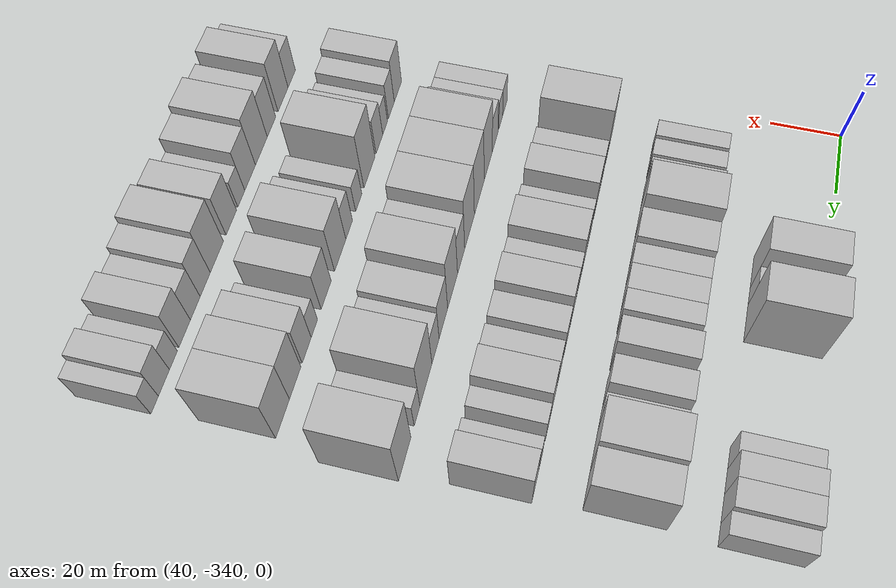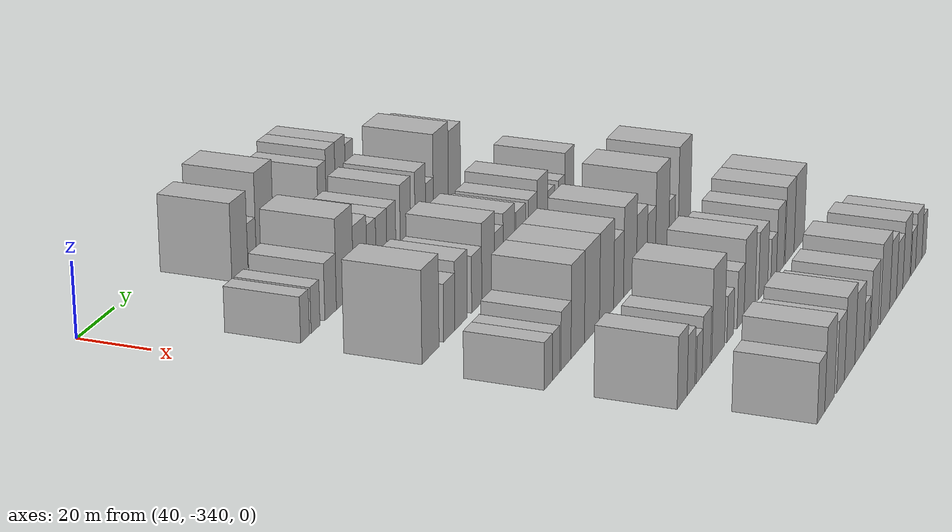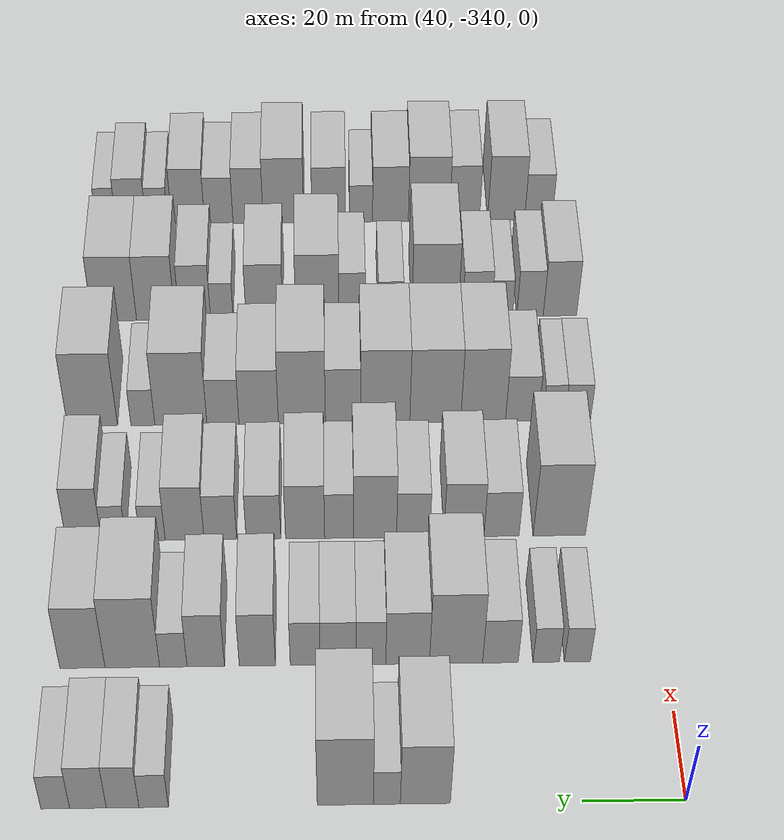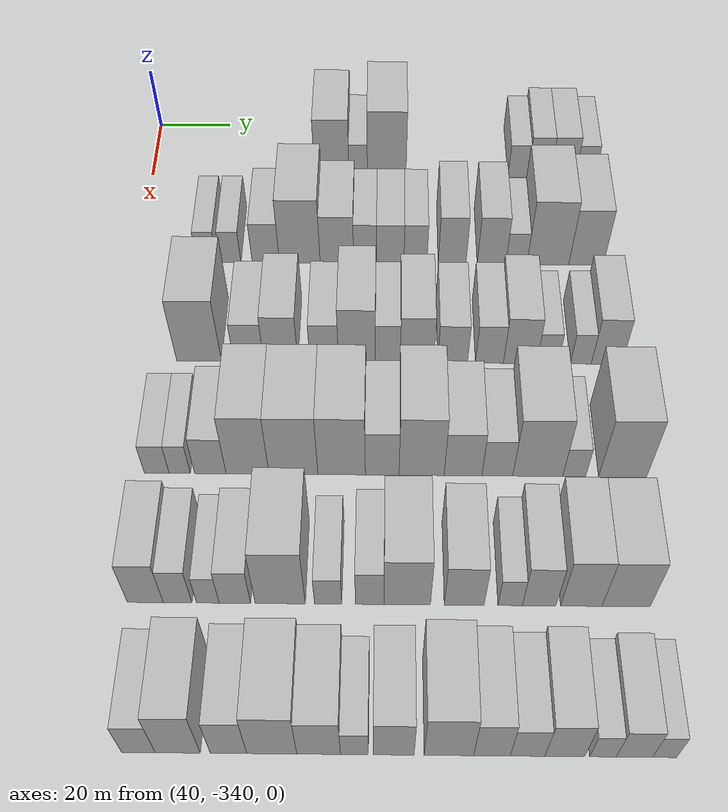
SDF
<sdf version="1.6">
 <world name="default">
  <model name="building_26">
   <static>1</static>
   <pose>50.0000 -289.6660 0 0.000000 0.000000 0.000000</pose>
   <link name="link">
    <pose>0 0 10.50 0 0 0</pose>
    <collision name="collision"><geometry><box><size>20.0000 9.6434 21.0000</size></box></geometry></collision>
    <visual name="visual">
     <cast_shadows>0</cast_shadows>
     <geometry><box><size>20.0000 9.6434 21.0000</size></box></geometry>
     <material>
      <script>
       <uri>model://HANNAS_wall/materials/scripts</uri>
       <uri>model://HANNAS_wall/materials/textures</uri>
       <name>vrc/HANNAS_wall</name>
      </script>
     </material>
    </visual>
   </link>
  </model>
  <model name="building_27">
   <static>1</static>
   <pose>50.0000 -282.2654 0 0.000000 0.000000 0.000000</pose>
   <link name="link">
    <pose>0 0 6.00 0 0 0</pose>
    <collision name="collision"><geometry><box><size>20.0000 5.1577 12.0000</size></box></geometry></collision>
    <visual name="visual">
     <cast_shadows>0</cast_shadows>
     <geometry><box><size>20.0000 5.1577 12.0000</size></box></geometry>
     <material>
      <script>
       <uri>model://HANNAS_wall/materials/scripts</uri>
       <uri>model://HANNAS_wall/materials/textures</uri>
       <name>vrc/HANNAS_wall</name>
      </script>
     </material>
    </visual>
   </link>
  </model>
  <model name="building_28">
   <static>1</static>
   <pose>50.0000 -274.2711 0 0.000000 0.000000 0.000000</pose>
   <link name="link">
    <pose>0 0 12.00 0 0 0</pose>
    <collision name="collision"><geometry><box><size>20.0000 10.8308 24.0000</size></box></geometry></collision>
    <visual name="visual">
     <cast_shadows>0</cast_shadows>
     <geometry><box><size>20.0000 10.8308 24.0000</size></box></geometry>
     <material>
      <script>
       <uri>model://HANNAS_wall/materials/scripts</uri>
       <uri>model://HANNAS_wall/materials/textures</uri>
       <name>vrc/HANNAS_wall</name>
      </script>
     </material>
    </visual>
   </link>
  </model>
  <model name="building_29">
   <static>1</static>
   <pose>50.0000 -237.3630 0 0.000000 0.000000 0.000000</pose>
   <link name="link">
    <pose>0 0 6.00 0 0 0</pose>
    <collision name="collision"><geometry><box><size>20.0000 5.6618 12.0000</size></box></geometry></collision>
    <visual name="visual">
     <cast_shadows>0</cast_shadows>
     <geometry><box><size>20.0000 5.6618 12.0000</size></box></geometry>
     <material>
      <script>
       <uri>model://HANNAS_wall/materials/scripts</uri>
       <uri>model://HANNAS_wall/materials/textures</uri>
       <name>vrc/HANNAS_wall</name>
      </script>
     </material>
    </visual>
   </link>
  </model>
  <model name="building_30">
   <static>1</static>
   <pose>50.0000 -231.3875 0 0.000000 0.000000 0.000000</pose>
   <link name="link">
    <pose>0 0 7.50 0 0 0</pose>
    <collision name="collision"><geometry><box><size>20.0000 6.2892 15.0000</size></box></geometry></collision>
    <visual name="visual">
     <cast_shadows>0</cast_shadows>
     <geometry><box><size>20.0000 6.2892 15.0000</size></box></geometry>
     <material>
      <script>
       <uri>model://HANNAS_wall/materials/scripts</uri>
       <uri>model://HANNAS_wall/materials/textures</uri>
       <name>vrc/HANNAS_wall</name>
      </script>
     </material>
    </visual>
   </link>
  </model>
  <model name="building_31">
   <static>1</static>
   <pose>50.0000 -224.7228 0 0.000000 0.000000 0.000000</pose>
   <link name="link">
    <pose>0 0 7.50 0 0 0</pose>
    <collision name="collision"><geometry><box><size>20.0000 7.0403 15.0000</size></box></geometry></collision>
    <visual name="visual">
     <cast_shadows>0</cast_shadows>
     <geometry><box><size>20.0000 7.0403 15.0000</size></box></geometry>
     <material>
      <script>
       <uri>model://HANNAS_wall/materials/scripts</uri>
       <uri>model://HANNAS_wall/materials/textures</uri>
       <name>vrc/HANNAS_wall</name>
      </script>
     </material>
    </visual>
   </link>
  </model>
  <model name="building_32">
   <static>1</static>
   <pose>50.0000 -218.4330 0 0.000000 0.000000 0.000000</pose>
   <link name="link">
    <pose>0 0 6.00 0 0 0</pose>
    <collision name="collision"><geometry><box><size>20.0000 5.5392 12.0000</size></box></geometry></collision>
    <visual name="visual">
     <cast_shadows>0</cast_shadows>
     <geometry><box><size>20.0000 5.5392 12.0000</size></box></geometry>
     <material>
      <script>
       <uri>model://HANNAS_wall/materials/scripts</uri>
       <uri>model://HANNAS_wall/materials/textures</uri>
       <name>vrc/HANNAS_wall</name>
      </script>
     </material>
    </visual>
   </link>
  </model>
  <model name="building_146">
   <static>1</static>
   <pose>82.0000 -321.7918 0 0.000000 0.000000 0.000000</pose>
   <link name="link">
    <pose>0 0 6.00 0 0 0</pose>
    <collision name="collision"><geometry><box><size>20.0000 5.2836 12.0000</size></box></geometry></collision>
    <visual name="visual">
     <cast_shadows>0</cast_shadows>
     <geometry><box><size>20.0000 5.2836 12.0000</size></box></geometry>
     <material>
      <script>
       <uri>model://HANNAS_wall/materials/scripts</uri>
       <uri>model://HANNAS_wall/materials/textures</uri>
       <name>vrc/HANNAS_wall</name>
      </script>
     </material>
    </visual>
   </link>
  </model>
  <model name="building_147">
   <static>1</static>
   <pose>82.0000 -315.4479 0 0.000000 0.000000 0.000000</pose>
   <link name="link">
    <pose>0 0 6.00 0 0 0</pose>
    <collision name="collision"><geometry><box><size>20.0000 5.4042 12.0000</size></box></geometry></collision>
    <visual name="visual">
     <cast_shadows>0</cast_shadows>
     <geometry><box><size>20.0000 5.4042 12.0000</size></box></geometry>
     <material>
      <script>
       <uri>model://HANNAS_wall/materials/scripts</uri>
       <uri>model://HANNAS_wall/materials/textures</uri>
       <name>vrc/HANNAS_wall</name>
      </script>
     </material>
    </visual>
   </link>
  </model>
  <model name="building_148">
   <static>1</static>
   <pose>82.0000 -306.1322 0 0.000000 0.000000 0.000000</pose>
   <link name="link">
    <pose>0 0 7.50 0 0 0</pose>
    <collision name="collision"><geometry><box><size>20.0000 7.2272 15.0000</size></box></geometry></collision>
    <visual name="visual">
     <cast_shadows>0</cast_shadows>
     <geometry><box><size>20.0000 7.2272 15.0000</size></box></geometry>
     <material>
      <script>
       <uri>model://HANNAS_wall/materials/scripts</uri>
       <uri>model://HANNAS_wall/materials/textures</uri>
       <name>vrc/HANNAS_wall</name>
      </script>
     </material>
    </visual>
   </link>
  </model>
  <model name="building_149">
   <static>1</static>
   <pose>82.0000 -297.1296 0 0.000000 0.000000 0.000000</pose>
   <link name="link">
    <pose>0 0 12.00 0 0 0</pose>
    <collision name="collision"><geometry><box><size>20.0000 10.7781 24.0000</size></box></geometry></collision>
    <visual name="visual">
     <cast_shadows>0</cast_shadows>
     <geometry><box><size>20.0000 10.7781 24.0000</size></box></geometry>
     <material>
      <script>
       <uri>model://HANNAS_wall/materials/scripts</uri>
       <uri>model://HANNAS_wall/materials/textures</uri>
       <name>vrc/HANNAS_wall</name>
      </script>
     </material>
    </visual>
   </link>
  </model>
  <model name="building_150">
   <static>1</static>
   <pose>82.0000 -287.2996 0 0.000000 0.000000 0.000000</pose>
   <link name="link">
    <pose>0 0 9.00 0 0 0</pose>
    <collision name="collision"><geometry><box><size>20.0000 8.8818 18.0000</size></box></geometry></collision>
    <visual name="visual">
     <cast_shadows>0</cast_shadows>
     <geometry><box><size>20.0000 8.8818 18.0000</size></box></geometry>
     <material>
      <script>
       <uri>model://HANNAS_wall/materials/scripts</uri>
       <uri>model://HANNAS_wall/materials/textures</uri>
       <name>vrc/HANNAS_wall</name>
      </script>
     </material>
    </visual>
   </link>
  </model>
  <model name="building_151">
   <static>1</static>
   <pose>82.0000 -279.8414 0 0.000000 0.000000 0.000000</pose>
   <link name="link">
    <pose>0 0 7.50 0 0 0</pose>
    <collision name="collision"><geometry><box><size>20.0000 6.0347 15.0000</size></box></geometry></collision>
    <visual name="visual">
     <cast_shadows>0</cast_shadows>
     <geometry><box><size>20.0000 6.0347 15.0000</size></box></geometry>
     <material>
      <script>
       <uri>model://HANNAS_wall/materials/scripts</uri>
       <uri>model://HANNAS_wall/materials/textures</uri>
       <name>vrc/HANNAS_wall</name>
      </script>
     </material>
    </visual>
   </link>
  </model>
  <model name="building_152">
   <static>1</static>
   <pose>82.0000 -273.1975 0 0.000000 0.000000 0.000000</pose>
   <link name="link">
    <pose>0 0 7.50 0 0 0</pose>
    <collision name="collision"><geometry><box><size>20.0000 7.2532 15.0000</size></box></geometry></collision>
    <visual name="visual">
     <cast_shadows>0</cast_shadows>
     <geometry><box><size>20.0000 7.2532 15.0000</size></box></geometry>
     <material>
      <script>
       <uri>model://HANNAS_wall/materials/scripts</uri>
       <uri>model://HANNAS_wall/materials/textures</uri>
       <name>vrc/HANNAS_wall</name>
      </script>
     </material>
    </visual>
   </link>
  </model>
  <model name="building_153">
   <static>1</static>
   <pose>82.0000 -266.5309 0 0.000000 0.000000 0.000000</pose>
   <link name="link">
    <pose>0 0 7.50 0 0 0</pose>
    <collision name="collision"><geometry><box><size>20.0000 6.0799 15.0000</size></box></geometry></collision>
    <visual name="visual">
     <cast_shadows>0</cast_shadows>
     <geometry><box><size>20.0000 6.0799 15.0000</size></box></geometry>
     <material>
      <script>
       <uri>model://HANNAS_wall/materials/scripts</uri>
       <uri>model://HANNAS_wall/materials/textures</uri>
       <name>vrc/HANNAS_wall</name>
      </script>
     </material>
    </visual>
   </link>
  </model>
  <model name="building_154">
   <static>1</static>
   <pose>82.0000 -256.8204 0 0.000000 0.000000 0.000000</pose>
   <link name="link">
    <pose>0 0 9.00 0 0 0</pose>
    <collision name="collision"><geometry><box><size>20.0000 7.3410 18.0000</size></box></geometry></collision>
    <visual name="visual">
     <cast_shadows>0</cast_shadows>
     <geometry><box><size>20.0000 7.3410 18.0000</size></box></geometry>
     <material>
      <script>
       <uri>model://HANNAS_wall/materials/scripts</uri>
       <uri>model://HANNAS_wall/materials/textures</uri>
       <name>vrc/HANNAS_wall</name>
      </script>
     </material>
    </visual>
   </link>
  </model>
  <model name="building_155">
   <static>1</static>
   <pose>82.0000 -246.3571 0 0.000000 0.000000 0.000000</pose>
   <link name="link">
    <pose>0 0 9.00 0 0 0</pose>
    <collision name="collision"><geometry><box><size>20.0000 7.5857 18.0000</size></box></geometry></collision>
    <visual name="visual">
     <cast_shadows>0</cast_shadows>
     <geometry><box><size>20.0000 7.5857 18.0000</size></box></geometry>
     <material>
      <script>
       <uri>model://HANNAS_wall/materials/scripts</uri>
       <uri>model://HANNAS_wall/materials/textures</uri>
       <name>vrc/HANNAS_wall</name>
      </script>
     </material>
    </visual>
   </link>
  </model>
  <model name="building_156">
   <static>1</static>
   <pose>82.0000 -239.7883 0 0.000000 0.000000 0.000000</pose>
   <link name="link">
    <pose>0 0 6.00 0 0 0</pose>
    <collision name="collision"><geometry><box><size>20.0000 5.5519 12.0000</size></box></geometry></collision>
    <visual name="visual">
     <cast_shadows>0</cast_shadows>
     <geometry><box><size>20.0000 5.5519 12.0000</size></box></geometry>
     <material>
      <script>
       <uri>model://HANNAS_wall/materials/scripts</uri>
       <uri>model://HANNAS_wall/materials/textures</uri>
       <name>vrc/HANNAS_wall</name>
      </script>
     </material>
    </visual>
   </link>
  </model>
  <model name="building_157">
   <static>1</static>
   <pose>82.0000 -231.4796 0 0.000000 0.000000 0.000000</pose>
   <link name="link">
    <pose>0 0 12.00 0 0 0</pose>
    <collision name="collision"><geometry><box><size>20.0000 11.0653 24.0000</size></box></geometry></collision>
    <visual name="visual">
     <cast_shadows>0</cast_shadows>
     <geometry><box><size>20.0000 11.0653 24.0000</size></box></geometry>
     <material>
      <script>
       <uri>model://HANNAS_wall/materials/scripts</uri>
       <uri>model://HANNAS_wall/materials/textures</uri>
       <name>vrc/HANNAS_wall</name>
      </script>
     </material>
    </visual>
   </link>
  </model>
  <model name="building_158">
   <static>1</static>
   <pose>82.0000 -221.3743 0 0.000000 0.000000 0.000000</pose>
   <link name="link">
    <pose>0 0 10.50 0 0 0</pose>
    <collision name="collision"><geometry><box><size>20.0000 9.1454 21.0000</size></box></geometry></collision>
    <visual name="visual">
     <cast_shadows>0</cast_shadows>
     <geometry><box><size>20.0000 9.1454 21.0000</size></box></geometry>
     <material>
      <script>
       <uri>model://HANNAS_wall/materials/scripts</uri>
       <uri>model://HANNAS_wall/materials/textures</uri>
       <name>vrc/HANNAS_wall</name>
      </script>
     </material>
    </visual>
   </link>
  </model>
  <model name="building_271">
   <static>1</static>
   <pose>114.0000 -320.6873 0 0.000000 0.000000 0.000000</pose>
   <link name="link">
    <pose>0 0 12.00 0 0 0</pose>
    <collision name="collision"><geometry><box><size>20.0000 11.1656 24.0000</size></box></geometry></collision>
    <visual name="visual">
     <cast_shadows>0</cast_shadows>
     <geometry><box><size>20.0000 11.1656 24.0000</size></box></geometry>
     <material>
      <script>
       <uri>model://HANNAS_wall/materials/scripts</uri>
       <uri>model://HANNAS_wall/materials/textures</uri>
       <name>vrc/HANNAS_wall</name>
      </script>
     </material>
    </visual>
   </link>
  </model>
  <model name="building_272">
   <static>1</static>
   <pose>114.0000 -308.3578 0 0.000000 0.000000 0.000000</pose>
   <link name="link">
    <pose>0 0 7.50 0 0 0</pose>
    <collision name="collision"><geometry><box><size>20.0000 7.4934 15.0000</size></box></geometry></collision>
    <visual name="visual">
     <cast_shadows>0</cast_shadows>
     <geometry><box><size>20.0000 7.4934 15.0000</size></box></geometry>
     <material>
      <script>
       <uri>model://HANNAS_wall/materials/scripts</uri>
       <uri>model://HANNAS_wall/materials/textures</uri>
       <name>vrc/HANNAS_wall</name>
      </script>
     </material>
    </visual>
   </link>
  </model>
  <model name="building_273">
   <static>1</static>
   <pose>114.0000 -300.3415 0 0.000000 0.000000 0.000000</pose>
   <link name="link">
    <pose>0 0 9.00 0 0 0</pose>
    <collision name="collision"><geometry><box><size>20.0000 8.5393 18.0000</size></box></geometry></collision>
    <visual name="visual">
     <cast_shadows>0</cast_shadows>
     <geometry><box><size>20.0000 8.5393 18.0000</size></box></geometry>
     <material>
      <script>
       <uri>model://HANNAS_wall/materials/scripts</uri>
       <uri>model://HANNAS_wall/materials/textures</uri>
       <name>vrc/HANNAS_wall</name>
      </script>
     </material>
    </visual>
   </link>
  </model>
  <model name="building_274">
   <static>1</static>
   <pose>114.0000 -289.5163 0 0.000000 0.000000 0.000000</pose>
   <link name="link">
    <pose>0 0 7.50 0 0 0</pose>
    <collision name="collision"><geometry><box><size>20.0000 7.1110 15.0000</size></box></geometry></collision>
    <visual name="visual">
     <cast_shadows>0</cast_shadows>
     <geometry><box><size>20.0000 7.1110 15.0000</size></box></geometry>
     <material>
      <script>
       <uri>model://HANNAS_wall/materials/scripts</uri>
       <uri>model://HANNAS_wall/materials/textures</uri>
       <name>vrc/HANNAS_wall</name>
      </script>
     </material>
    </visual>
   </link>
  </model>
  <model name="building_275">
   <static>1</static>
   <pose>114.0000 -281.3859 0 0.000000 0.000000 0.000000</pose>
   <link name="link">
    <pose>0 0 10.50 0 0 0</pose>
    <collision name="collision"><geometry><box><size>20.0000 9.1499 21.0000</size></box></geometry></collision>
    <visual name="visual">
     <cast_shadows>0</cast_shadows>
     <geometry><box><size>20.0000 9.1499 21.0000</size></box></geometry>
     <material>
      <script>
       <uri>model://HANNAS_wall/materials/scripts</uri>
       <uri>model://HANNAS_wall/materials/textures</uri>
       <name>vrc/HANNAS_wall</name>
      </script>
     </material>
    </visual>
   </link>
  </model>
  <model name="building_276">
   <static>1</static>
   <pose>114.0000 -273.7319 0 0.000000 0.000000 0.000000</pose>
   <link name="link">
    <pose>0 0 7.50 0 0 0</pose>
    <collision name="collision"><geometry><box><size>20.0000 6.1581 15.0000</size></box></geometry></collision>
    <visual name="visual">
     <cast_shadows>0</cast_shadows>
     <geometry><box><size>20.0000 6.1581 15.0000</size></box></geometry>
     <material>
      <script>
       <uri>model://HANNAS_wall/materials/scripts</uri>
       <uri>model://HANNAS_wall/materials/textures</uri>
       <name>vrc/HANNAS_wall</name>
      </script>
     </material>
    </visual>
   </link>
  </model>
  <model name="building_277">
   <static>1</static>
   <pose>114.0000 -266.4886 0 0.000000 0.000000 0.000000</pose>
   <link name="link">
    <pose>0 0 9.00 0 0 0</pose>
    <collision name="collision"><geometry><box><size>20.0000 8.3285 18.0000</size></box></geometry></collision>
    <visual name="visual">
     <cast_shadows>0</cast_shadows>
     <geometry><box><size>20.0000 8.3285 18.0000</size></box></geometry>
     <material>
      <script>
       <uri>model://HANNAS_wall/materials/scripts</uri>
       <uri>model://HANNAS_wall/materials/textures</uri>
       <name>vrc/HANNAS_wall</name>
      </script>
     </material>
    </visual>
   </link>
  </model>
  <model name="building_278">
   <static>1</static>
   <pose>114.0000 -257.6236 0 0.000000 0.000000 0.000000</pose>
   <link name="link">
    <pose>0 0 7.50 0 0 0</pose>
    <collision name="collision"><geometry><box><size>20.0000 7.4015 15.0000</size></box></geometry></collision>
    <visual name="visual">
     <cast_shadows>0</cast_shadows>
     <geometry><box><size>20.0000 7.4015 15.0000</size></box></geometry>
     <material>
      <script>
       <uri>model://HANNAS_wall/materials/scripts</uri>
       <uri>model://HANNAS_wall/materials/textures</uri>
       <name>vrc/HANNAS_wall</name>
      </script>
     </material>
    </visual>
   </link>
  </model>
  <model name="building_279">
   <static>1</static>
   <pose>114.0000 -248.4529 0 0.000000 0.000000 0.000000</pose>
   <link name="link">
    <pose>0 0 7.50 0 0 0</pose>
    <collision name="collision"><geometry><box><size>20.0000 6.9400 15.0000</size></box></geometry></collision>
    <visual name="visual">
     <cast_shadows>0</cast_shadows>
     <geometry><box><size>20.0000 6.9400 15.0000</size></box></geometry>
     <material>
      <script>
       <uri>model://HANNAS_wall/materials/scripts</uri>
       <uri>model://HANNAS_wall/materials/textures</uri>
       <name>vrc/HANNAS_wall</name>
      </script>
     </material>
    </visual>
   </link>
  </model>
  <model name="building_280">
   <static>1</static>
   <pose>114.0000 -240.8406 0 0.000000 0.000000 0.000000</pose>
   <link name="link">
    <pose>0 0 9.00 0 0 0</pose>
    <collision name="collision"><geometry><box><size>20.0000 8.2845 18.0000</size></box></geometry></collision>
    <visual name="visual">
     <cast_shadows>0</cast_shadows>
     <geometry><box><size>20.0000 8.2845 18.0000</size></box></geometry>
     <material>
      <script>
       <uri>model://HANNAS_wall/materials/scripts</uri>
       <uri>model://HANNAS_wall/materials/textures</uri>
       <name>vrc/HANNAS_wall</name>
      </script>
     </material>
    </visual>
   </link>
  </model>
  <model name="building_281">
   <static>1</static>
   <pose>114.0000 -234.0204 0 0.000000 0.000000 0.000000</pose>
   <link name="link">
    <pose>0 0 6.00 0 0 0</pose>
    <collision name="collision"><geometry><box><size>20.0000 5.3559 12.0000</size></box></geometry></collision>
    <visual name="visual">
     <cast_shadows>0</cast_shadows>
     <geometry><box><size>20.0000 5.3559 12.0000</size></box></geometry>
     <material>
      <script>
       <uri>model://HANNAS_wall/materials/scripts</uri>
       <uri>model://HANNAS_wall/materials/textures</uri>
       <name>vrc/HANNAS_wall</name>
      </script>
     </material>
    </visual>
   </link>
  </model>
  <model name="building_282">
   <static>1</static>
   <pose>114.0000 -225.7488 0 0.000000 0.000000 0.000000</pose>
   <link name="link">
    <pose>0 0 6.00 0 0 0</pose>
    <collision name="collision"><geometry><box><size>20.0000 5.1872 12.0000</size></box></geometry></collision>
    <visual name="visual">
     <cast_shadows>0</cast_shadows>
     <geometry><box><size>20.0000 5.1872 12.0000</size></box></geometry>
     <material>
      <script>
       <uri>model://HANNAS_wall/materials/scripts</uri>
       <uri>model://HANNAS_wall/materials/textures</uri>
       <name>vrc/HANNAS_wall</name>
      </script>
     </material>
    </visual>
   </link>
  </model>
  <model name="building_283">
   <static>1</static>
   <pose>114.0000 -219.3821 0 0.000000 0.000000 0.000000</pose>
   <link name="link">
    <pose>0 0 9.00 0 0 0</pose>
    <collision name="collision"><geometry><box><size>20.0000 7.5464 18.0000</size></box></geometry></collision>
    <visual name="visual">
     <cast_shadows>0</cast_shadows>
     <geometry><box><size>20.0000 7.5464 18.0000</size></box></geometry>
     <material>
      <script>
       <uri>model://HANNAS_wall/materials/scripts</uri>
       <uri>model://HANNAS_wall/materials/textures</uri>
       <name>vrc/HANNAS_wall</name>
      </script>
     </material>
    </visual>
   </link>
  </model>
  <model name="building_392">
   <static>1</static>
   <pose>146.0000 -327.3900 0 0.000000 0.000000 0.000000</pose>
   <link name="link">
    <pose>0 0 6.00 0 0 0</pose>
    <collision name="collision"><geometry><box><size>20.0000 5.7644 12.0000</size></box></geometry></collision>
    <visual name="visual">
     <cast_shadows>0</cast_shadows>
     <geometry><box><size>20.0000 5.7644 12.0000</size></box></geometry>
     <material>
      <script>
       <uri>model://HANNAS_wall/materials/scripts</uri>
       <uri>model://HANNAS_wall/materials/textures</uri>
       <name>vrc/HANNAS_wall</name>
      </script>
     </material>
    </visual>
   </link>
  </model>
  <model name="building_393">
   <static>1</static>
   <pose>146.0000 -322.0455 0 0.000000 0.000000 0.000000</pose>
   <link name="link">
    <pose>0 0 6.00 0 0 0</pose>
    <collision name="collision"><geometry><box><size>20.0000 4.9247 12.0000</size></box></geometry></collision>
    <visual name="visual">
     <cast_shadows>0</cast_shadows>
     <geometry><box><size>20.0000 4.9247 12.0000</size></box></geometry>
     <material>
      <script>
       <uri>model://HANNAS_wall/materials/scripts</uri>
       <uri>model://HANNAS_wall/materials/textures</uri>
       <name>vrc/HANNAS_wall</name>
      </script>
     </material>
    </visual>
   </link>
  </model>
  <model name="building_394">
   <static>1</static>
   <pose>146.0000 -314.9111 0 0.000000 0.000000 0.000000</pose>
   <link name="link">
    <pose>0 0 7.50 0 0 0</pose>
    <collision name="collision"><geometry><box><size>20.0000 7.3443 15.0000</size></box></geometry></collision>
    <visual name="visual">
     <cast_shadows>0</cast_shadows>
     <geometry><box><size>20.0000 7.3443 15.0000</size></box></geometry>
     <material>
      <script>
       <uri>model://HANNAS_wall/materials/scripts</uri>
       <uri>model://HANNAS_wall/materials/textures</uri>
       <name>vrc/HANNAS_wall</name>
      </script>
     </material>
    </visual>
   </link>
  </model>
  <model name="building_395">
   <static>1</static>
   <pose>146.0000 -306.2437 0 0.000000 0.000000 0.000000</pose>
   <link name="link">
    <pose>0 0 12.00 0 0 0</pose>
    <collision name="collision"><geometry><box><size>20.0000 9.9905 24.0000</size></box></geometry></collision>
    <visual name="visual">
     <cast_shadows>0</cast_shadows>
     <geometry><box><size>20.0000 9.9905 24.0000</size></box></geometry>
     <material>
      <script>
       <uri>model://HANNAS_wall/materials/scripts</uri>
       <uri>model://HANNAS_wall/materials/textures</uri>
       <name>vrc/HANNAS_wall</name>
      </script>
     </material>
    </visual>
   </link>
  </model>
  <model name="building_396">
   <static>1</static>
   <pose>146.0000 -295.5446 0 0.000000 0.000000 0.000000</pose>
   <link name="link">
    <pose>0 0 12.00 0 0 0</pose>
    <collision name="collision"><geometry><box><size>20.0000 11.4077 24.0000</size></box></geometry></collision>
    <visual name="visual">
     <cast_shadows>0</cast_shadows>
     <geometry><box><size>20.0000 11.4077 24.0000</size></box></geometry>
     <material>
      <script>
       <uri>model://HANNAS_wall/materials/scripts</uri>
       <uri>model://HANNAS_wall/materials/textures</uri>
       <name>vrc/HANNAS_wall</name>
      </script>
     </material>
    </visual>
   </link>
  </model>
  <model name="building_397">
   <static>1</static>
   <pose>146.0000 -284.3387 0 0.000000 0.000000 0.000000</pose>
   <link name="link">
    <pose>0 0 12.00 0 0 0</pose>
    <collision name="collision"><geometry><box><size>20.0000 11.0041 24.0000</size></box></geometry></collision>
    <visual name="visual">
     <cast_shadows>0</cast_shadows>
     <geometry><box><size>20.0000 11.0041 24.0000</size></box></geometry>
     <material>
      <script>
       <uri>model://HANNAS_wall/materials/scripts</uri>
       <uri>model://HANNAS_wall/materials/textures</uri>
       <name>vrc/HANNAS_wall</name>
      </script>
     </material>
    </visual>
   </link>
  </model>
  <model name="building_398">
   <static>1</static>
   <pose>146.0000 -274.9222 0 0.000000 0.000000 0.000000</pose>
   <link name="link">
    <pose>0 0 9.00 0 0 0</pose>
    <collision name="collision"><geometry><box><size>20.0000 7.8288 18.0000</size></box></geometry></collision>
    <visual name="visual">
     <cast_shadows>0</cast_shadows>
     <geometry><box><size>20.0000 7.8288 18.0000</size></box></geometry>
     <material>
      <script>
       <uri>model://HANNAS_wall/materials/scripts</uri>
       <uri>model://HANNAS_wall/materials/textures</uri>
       <name>vrc/HANNAS_wall</name>
      </script>
     </material>
    </visual>
   </link>
  </model>
  <model name="building_399">
   <static>1</static>
   <pose>146.0000 -265.7611 0 0.000000 0.000000 0.000000</pose>
   <link name="link">
    <pose>0 0 12.00 0 0 0</pose>
    <collision name="collision"><geometry><box><size>20.0000 10.4935 24.0000</size></box></geometry></collision>
    <visual name="visual">
     <cast_shadows>0</cast_shadows>
     <geometry><box><size>20.0000 10.4935 24.0000</size></box></geometry>
     <material>
      <script>
       <uri>model://HANNAS_wall/materials/scripts</uri>
       <uri>model://HANNAS_wall/materials/textures</uri>
       <name>vrc/HANNAS_wall</name>
      </script>
     </material>
    </visual>
   </link>
  </model>
  <model name="building_400">
   <static>1</static>
   <pose>146.0000 -256.1226 0 0.000000 0.000000 0.000000</pose>
   <link name="link">
    <pose>0 0 9.00 0 0 0</pose>
    <collision name="collision"><geometry><box><size>20.0000 8.7835 18.0000</size></box></geometry></collision>
    <visual name="visual">
     <cast_shadows>0</cast_shadows>
     <geometry><box><size>20.0000 8.7835 18.0000</size></box></geometry>
     <material>
      <script>
       <uri>model://HANNAS_wall/materials/scripts</uri>
       <uri>model://HANNAS_wall/materials/textures</uri>
       <name>vrc/HANNAS_wall</name>
      </script>
     </material>
    </visual>
   </link>
  </model>
  <model name="building_401">
   <static>1</static>
   <pose>146.0000 -248.1497 0 0.000000 0.000000 0.000000</pose>
   <link name="link">
    <pose>0 0 7.50 0 0 0</pose>
    <collision name="collision"><geometry><box><size>20.0000 7.1624 15.0000</size></box></geometry></collision>
    <visual name="visual">
     <cast_shadows>0</cast_shadows>
     <geometry><box><size>20.0000 7.1624 15.0000</size></box></geometry>
     <material>
      <script>
       <uri>model://HANNAS_wall/materials/scripts</uri>
       <uri>model://HANNAS_wall/materials/textures</uri>
       <name>vrc/HANNAS_wall</name>
      </script>
     </material>
    </visual>
   </link>
  </model>
  <model name="building_402">
   <static>1</static>
   <pose>146.0000 -238.7579 0 0.000000 0.000000 0.000000</pose>
   <link name="link">
    <pose>0 0 12.00 0 0 0</pose>
    <collision name="collision"><geometry><box><size>20.0000 11.6211 24.0000</size></box></geometry></collision>
    <visual name="visual">
     <cast_shadows>0</cast_shadows>
     <geometry><box><size>20.0000 11.6211 24.0000</size></box></geometry>
     <material>
      <script>
       <uri>model://HANNAS_wall/materials/scripts</uri>
       <uri>model://HANNAS_wall/materials/textures</uri>
       <name>vrc/HANNAS_wall</name>
      </script>
     </material>
    </visual>
   </link>
  </model>
  <model name="building_403">
   <static>1</static>
   <pose>146.0000 -230.2852 0 0.000000 0.000000 0.000000</pose>
   <link name="link">
    <pose>0 0 6.00 0 0 0</pose>
    <collision name="collision"><geometry><box><size>20.0000 5.3244 12.0000</size></box></geometry></collision>
    <visual name="visual">
     <cast_shadows>0</cast_shadows>
     <geometry><box><size>20.0000 5.3244 12.0000</size></box></geometry>
     <material>
      <script>
       <uri>model://HANNAS_wall/materials/scripts</uri>
       <uri>model://HANNAS_wall/materials/textures</uri>
       <name>vrc/HANNAS_wall</name>
      </script>
     </material>
    </visual>
   </link>
  </model>
  <model name="building_404">
   <static>1</static>
   <pose>146.0000 -219.0445 0 0.000000 0.000000 0.000000</pose>
   <link name="link">
    <pose>0 0 12.00 0 0 0</pose>
    <collision name="collision"><geometry><box><size>20.0000 11.1571 24.0000</size></box></geometry></collision>
    <visual name="visual">
     <cast_shadows>0</cast_shadows>
     <geometry><box><size>20.0000 11.1571 24.0000</size></box></geometry>
     <material>
      <script>
       <uri>model://HANNAS_wall/materials/scripts</uri>
       <uri>model://HANNAS_wall/materials/textures</uri>
       <name>vrc/HANNAS_wall</name>
      </script>
     </material>
    </visual>
   </link>
  </model>
  <model name="building_512">
   <static>1</static>
   <pose>178.0000 -326.0150 0 0.000000 0.000000 0.000000</pose>
   <link name="link">
    <pose>0 0 9.00 0 0 0</pose>
    <collision name="collision"><geometry><box><size>20.0000 7.8042 18.0000</size></box></geometry></collision>
    <visual name="visual">
     <cast_shadows>0</cast_shadows>
     <geometry><box><size>20.0000 7.8042 18.0000</size></box></geometry>
     <material>
      <script>
       <uri>model://HANNAS_wall/materials/scripts</uri>
       <uri>model://HANNAS_wall/materials/textures</uri>
       <name>vrc/HANNAS_wall</name>
      </script>
     </material>
    </visual>
   </link>
  </model>
  <model name="building_513">
   <static>1</static>
   <pose>178.0000 -319.0142 0 0.000000 0.000000 0.000000</pose>
   <link name="link">
    <pose>0 0 7.50 0 0 0</pose>
    <collision name="collision"><geometry><box><size>20.0000 6.1974 15.0000</size></box></geometry></collision>
    <visual name="visual">
     <cast_shadows>0</cast_shadows>
     <geometry><box><size>20.0000 6.1974 15.0000</size></box></geometry>
     <material>
      <script>
       <uri>model://HANNAS_wall/materials/scripts</uri>
       <uri>model://HANNAS_wall/materials/textures</uri>
       <name>vrc/HANNAS_wall</name>
      </script>
     </material>
    </visual>
   </link>
  </model>
  <model name="building_514">
   <static>1</static>
   <pose>178.0000 -312.4749 0 0.000000 0.000000 0.000000</pose>
   <link name="link">
    <pose>0 0 6.00 0 0 0</pose>
    <collision name="collision"><geometry><box><size>20.0000 4.8812 12.0000</size></box></geometry></collision>
    <visual name="visual">
     <cast_shadows>0</cast_shadows>
     <geometry><box><size>20.0000 4.8812 12.0000</size></box></geometry>
     <material>
      <script>
       <uri>model://HANNAS_wall/materials/scripts</uri>
       <uri>model://HANNAS_wall/materials/textures</uri>
       <name>vrc/HANNAS_wall</name>
      </script>
     </material>
    </visual>
   </link>
  </model>
  <model name="building_515">
   <static>1</static>
   <pose>178.0000 -306.6164 0 0.000000 0.000000 0.000000</pose>
   <link name="link">
    <pose>0 0 7.50 0 0 0</pose>
    <collision name="collision"><geometry><box><size>20.0000 6.8357 15.0000</size></box></geometry></collision>
    <visual name="visual">
     <cast_shadows>0</cast_shadows>
     <geometry><box><size>20.0000 6.8357 15.0000</size></box></geometry>
     <material>
      <script>
       <uri>model://HANNAS_wall/materials/scripts</uri>
       <uri>model://HANNAS_wall/materials/textures</uri>
       <name>vrc/HANNAS_wall</name>
      </script>
     </material>
    </visual>
   </link>
  </model>
  <model name="building_516">
   <static>1</static>
   <pose>178.0000 -296.7702 0 0.000000 0.000000 0.000000</pose>
   <link name="link">
    <pose>0 0 12.00 0 0 0</pose>
    <collision name="collision"><geometry><box><size>20.0000 10.8569 24.0000</size></box></geometry></collision>
    <visual name="visual">
     <cast_shadows>0</cast_shadows>
     <geometry><box><size>20.0000 10.8569 24.0000</size></box></geometry>
     <material>
      <script>
       <uri>model://HANNAS_wall/materials/scripts</uri>
       <uri>model://HANNAS_wall/materials/textures</uri>
       <name>vrc/HANNAS_wall</name>
      </script>
     </material>
    </visual>
   </link>
  </model>
  <model name="building_517">
   <static>1</static>
   <pose>178.0000 -286.4016 0 0.000000 0.000000 0.000000</pose>
   <link name="link">
    <pose>0 0 6.00 0 0 0</pose>
    <collision name="collision"><geometry><box><size>20.0000 5.8803 12.0000</size></box></geometry></collision>
    <visual name="visual">
     <cast_shadows>0</cast_shadows>
     <geometry><box><size>20.0000 5.8803 12.0000</size></box></geometry>
     <material>
      <script>
       <uri>model://HANNAS_wall/materials/scripts</uri>
       <uri>model://HANNAS_wall/materials/textures</uri>
       <name>vrc/HANNAS_wall</name>
      </script>
     </material>
    </visual>
   </link>
  </model>
  <model name="building_518">
   <static>1</static>
   <pose>178.0000 -277.4028 0 0.000000 0.000000 0.000000</pose>
   <link name="link">
    <pose>0 0 7.50 0 0 0</pose>
    <collision name="collision"><geometry><box><size>20.0000 6.1172 15.0000</size></box></geometry></collision>
    <visual name="visual">
     <cast_shadows>0</cast_shadows>
     <geometry><box><size>20.0000 6.1172 15.0000</size></box></geometry>
     <material>
      <script>
       <uri>model://HANNAS_wall/materials/scripts</uri>
       <uri>model://HANNAS_wall/materials/textures</uri>
       <name>vrc/HANNAS_wall</name>
      </script>
     </material>
    </visual>
   </link>
  </model>
  <model name="building_519">
   <static>1</static>
   <pose>178.0000 -269.3159 0 0.000000 0.000000 0.000000</pose>
   <link name="link">
    <pose>0 0 10.50 0 0 0</pose>
    <collision name="collision"><geometry><box><size>20.0000 10.0566 21.0000</size></box></geometry></collision>
    <visual name="visual">
     <cast_shadows>0</cast_shadows>
     <geometry><box><size>20.0000 10.0566 21.0000</size></box></geometry>
     <material>
      <script>
       <uri>model://HANNAS_wall/materials/scripts</uri>
       <uri>model://HANNAS_wall/materials/textures</uri>
       <name>vrc/HANNAS_wall</name>
      </script>
     </material>
    </visual>
   </link>
  </model>
  <model name="building_520">
   <static>1</static>
   <pose>178.0000 -256.9803 0 0.000000 0.000000 0.000000</pose>
   <link name="link">
    <pose>0 0 9.00 0 0 0</pose>
    <collision name="collision"><geometry><box><size>20.0000 8.6145 18.0000</size></box></geometry></collision>
    <visual name="visual">
     <cast_shadows>0</cast_shadows>
     <geometry><box><size>20.0000 8.6145 18.0000</size></box></geometry>
     <material>
      <script>
       <uri>model://HANNAS_wall/materials/scripts</uri>
       <uri>model://HANNAS_wall/materials/textures</uri>
       <name>vrc/HANNAS_wall</name>
      </script>
     </material>
    </visual>
   </link>
  </model>
  <model name="building_521">
   <static>1</static>
   <pose>178.0000 -247.0422 0 0.000000 0.000000 0.000000</pose>
   <link name="link">
    <pose>0 0 6.00 0 0 0</pose>
    <collision name="collision"><geometry><box><size>20.0000 5.2616 12.0000</size></box></geometry></collision>
    <visual name="visual">
     <cast_shadows>0</cast_shadows>
     <geometry><box><size>20.0000 5.2616 12.0000</size></box></geometry>
     <material>
      <script>
       <uri>model://HANNAS_wall/materials/scripts</uri>
       <uri>model://HANNAS_wall/materials/textures</uri>
       <name>vrc/HANNAS_wall</name>
      </script>
     </material>
    </visual>
   </link>
  </model>
  <model name="building_522">
   <static>1</static>
   <pose>178.0000 -240.7720 0 0.000000 0.000000 0.000000</pose>
   <link name="link">
    <pose>0 0 9.00 0 0 0</pose>
    <collision name="collision"><geometry><box><size>20.0000 7.2788 18.0000</size></box></geometry></collision>
    <visual name="visual">
     <cast_shadows>0</cast_shadows>
     <geometry><box><size>20.0000 7.2788 18.0000</size></box></geometry>
     <material>
      <script>
       <uri>model://HANNAS_wall/materials/scripts</uri>
       <uri>model://HANNAS_wall/materials/textures</uri>
       <name>vrc/HANNAS_wall</name>
      </script>
     </material>
    </visual>
   </link>
  </model>
  <model name="building_523">
   <static>1</static>
   <pose>178.0000 -231.6453 0 0.000000 0.000000 0.000000</pose>
   <link name="link">
    <pose>0 0 10.50 0 0 0</pose>
    <collision name="collision"><geometry><box><size>20.0000 8.9748 21.0000</size></box></geometry></collision>
    <visual name="visual">
     <cast_shadows>0</cast_shadows>
     <geometry><box><size>20.0000 8.9748 21.0000</size></box></geometry>
     <material>
      <script>
       <uri>model://HANNAS_wall/materials/scripts</uri>
       <uri>model://HANNAS_wall/materials/textures</uri>
       <name>vrc/HANNAS_wall</name>
      </script>
     </material>
    </visual>
   </link>
  </model>
  <model name="building_524">
   <static>1</static>
   <pose>178.0000 -221.9714 0 0.000000 0.000000 0.000000</pose>
   <link name="link">
    <pose>0 0 10.50 0 0 0</pose>
    <collision name="collision"><geometry><box><size>20.0000 10.3730 21.0000</size></box></geometry></collision>
    <visual name="visual">
     <cast_shadows>0</cast_shadows>
     <geometry><box><size>20.0000 10.3730 21.0000</size></box></geometry>
     <material>
      <script>
       <uri>model://HANNAS_wall/materials/scripts</uri>
       <uri>model://HANNAS_wall/materials/textures</uri>
       <name>vrc/HANNAS_wall</name>
      </script>
     </material>
    </visual>
   </link>
  </model>
  <model name="building_631">
   <static>1</static>
   <pose>210.0000 -323.3502 0 0.000000 0.000000 0.000000</pose>
   <link name="link">
    <pose>0 0 7.50 0 0 0</pose>
    <collision name="collision"><geometry><box><size>20.0000 6.7635 15.0000</size></box></geometry></collision>
    <visual name="visual">
     <cast_shadows>0</cast_shadows>
     <geometry><box><size>20.0000 6.7635 15.0000</size></box></geometry>
     <material>
      <script>
       <uri>model://HANNAS_wall/materials/scripts</uri>
       <uri>model://HANNAS_wall/materials/textures</uri>
       <name>vrc/HANNAS_wall</name>
      </script>
     </material>
    </visual>
   </link>
  </model>
  <model name="building_632">
   <static>1</static>
   <pose>210.0000 -315.4655 0 0.000000 0.000000 0.000000</pose>
   <link name="link">
    <pose>0 0 10.50 0 0 0</pose>
    <collision name="collision"><geometry><box><size>20.0000 9.0059 21.0000</size></box></geometry></collision>
    <visual name="visual">
     <cast_shadows>0</cast_shadows>
     <geometry><box><size>20.0000 9.0059 21.0000</size></box></geometry>
     <material>
      <script>
       <uri>model://HANNAS_wall/materials/scripts</uri>
       <uri>model://HANNAS_wall/materials/textures</uri>
       <name>vrc/HANNAS_wall</name>
      </script>
     </material>
    </visual>
   </link>
  </model>
  <model name="building_633">
   <static>1</static>
   <pose>210.0000 -305.2978 0 0.000000 0.000000 0.000000</pose>
   <link name="link">
    <pose>0 0 9.00 0 0 0</pose>
    <collision name="collision"><geometry><box><size>20.0000 7.3295 18.0000</size></box></geometry></collision>
    <visual name="visual">
     <cast_shadows>0</cast_shadows>
     <geometry><box><size>20.0000 7.3295 18.0000</size></box></geometry>
     <material>
      <script>
       <uri>model://HANNAS_wall/materials/scripts</uri>
       <uri>model://HANNAS_wall/materials/textures</uri>
       <name>vrc/HANNAS_wall</name>
      </script>
     </material>
    </visual>
   </link>
  </model>
  <model name="building_634">
   <static>1</static>
   <pose>210.0000 -296.6245 0 0.000000 0.000000 0.000000</pose>
   <link name="link">
    <pose>0 0 10.50 0 0 0</pose>
    <collision name="collision"><geometry><box><size>20.0000 10.0171 21.0000</size></box></geometry></collision>
    <visual name="visual">
     <cast_shadows>0</cast_shadows>
     <geometry><box><size>20.0000 10.0171 21.0000</size></box></geometry>
     <material>
      <script>
       <uri>model://HANNAS_wall/materials/scripts</uri>
       <uri>model://HANNAS_wall/materials/textures</uri>
       <name>vrc/HANNAS_wall</name>
      </script>
     </material>
    </visual>
   </link>
  </model>
  <model name="building_635">
   <static>1</static>
   <pose>210.0000 -287.2436 0 0.000000 0.000000 0.000000</pose>
   <link name="link">
    <pose>0 0 9.00 0 0 0</pose>
    <collision name="collision"><geometry><box><size>20.0000 8.7448 18.0000</size></box></geometry></collision>
    <visual name="visual">
     <cast_shadows>0</cast_shadows>
     <geometry><box><size>20.0000 8.7448 18.0000</size></box></geometry>
     <material>
      <script>
       <uri>model://HANNAS_wall/materials/scripts</uri>
       <uri>model://HANNAS_wall/materials/textures</uri>
       <name>vrc/HANNAS_wall</name>
      </script>
     </material>
    </visual>
   </link>
  </model>
  <model name="building_636">
   <static>1</static>
   <pose>210.0000 -280.0822 0 0.000000 0.000000 0.000000</pose>
   <link name="link">
    <pose>0 0 6.00 0 0 0</pose>
    <collision name="collision"><geometry><box><size>20.0000 5.5781 12.0000</size></box></geometry></collision>
    <visual name="visual">
     <cast_shadows>0</cast_shadows>
     <geometry><box><size>20.0000 5.5781 12.0000</size></box></geometry>
     <material>
      <script>
       <uri>model://HANNAS_wall/materials/scripts</uri>
       <uri>model://HANNAS_wall/materials/textures</uri>
       <name>vrc/HANNAS_wall</name>
      </script>
     </material>
    </visual>
   </link>
  </model>
  <model name="building_637">
   <static>1</static>
   <pose>210.0000 -272.2124 0 0.000000 0.000000 0.000000</pose>
   <link name="link">
    <pose>0 0 9.00 0 0 0</pose>
    <collision name="collision"><geometry><box><size>20.0000 8.1614 18.0000</size></box></geometry></collision>
    <visual name="visual">
     <cast_shadows>0</cast_shadows>
     <geometry><box><size>20.0000 8.1614 18.0000</size></box></geometry>
     <material>
      <script>
       <uri>model://HANNAS_wall/materials/scripts</uri>
       <uri>model://HANNAS_wall/materials/textures</uri>
       <name>vrc/HANNAS_wall</name>
      </script>
     </material>
    </visual>
   </link>
  </model>
  <model name="building_638">
   <static>1</static>
   <pose>210.0000 -261.1813 0 0.000000 0.000000 0.000000</pose>
   <link name="link">
    <pose>0 0 10.50 0 0 0</pose>
    <collision name="collision"><geometry><box><size>20.0000 9.9008 21.0000</size></box></geometry></collision>
    <visual name="visual">
     <cast_shadows>0</cast_shadows>
     <geometry><box><size>20.0000 9.9008 21.0000</size></box></geometry>
     <material>
      <script>
       <uri>model://HANNAS_wall/materials/scripts</uri>
       <uri>model://HANNAS_wall/materials/textures</uri>
       <name>vrc/HANNAS_wall</name>
      </script>
     </material>
    </visual>
   </link>
  </model>
  <model name="building_639">
   <static>1</static>
   <pose>210.0000 -252.5581 0 0.000000 0.000000 0.000000</pose>
   <link name="link">
    <pose>0 0 9.00 0 0 0</pose>
    <collision name="collision"><geometry><box><size>20.0000 7.3456 18.0000</size></box></geometry></collision>
    <visual name="visual">
     <cast_shadows>0</cast_shadows>
     <geometry><box><size>20.0000 7.3456 18.0000</size></box></geometry>
     <material>
      <script>
       <uri>model://HANNAS_wall/materials/scripts</uri>
       <uri>model://HANNAS_wall/materials/textures</uri>
       <name>vrc/HANNAS_wall</name>
      </script>
     </material>
    </visual>
   </link>
  </model>
  <model name="building_640">
   <static>1</static>
   <pose>210.0000 -245.4276 0 0.000000 0.000000 0.000000</pose>
   <link name="link">
    <pose>0 0 7.50 0 0 0</pose>
    <collision name="collision"><geometry><box><size>20.0000 6.9156 15.0000</size></box></geometry></collision>
    <visual name="visual">
     <cast_shadows>0</cast_shadows>
     <geometry><box><size>20.0000 6.9156 15.0000</size></box></geometry>
     <material>
      <script>
       <uri>model://HANNAS_wall/materials/scripts</uri>
       <uri>model://HANNAS_wall/materials/textures</uri>
       <name>vrc/HANNAS_wall</name>
      </script>
     </material>
    </visual>
   </link>
  </model>
  <model name="building_641">
   <static>1</static>
   <pose>210.0000 -237.9869 0 0.000000 0.000000 0.000000</pose>
   <link name="link">
    <pose>0 0 9.00 0 0 0</pose>
    <collision name="collision"><geometry><box><size>20.0000 7.9658 18.0000</size></box></geometry></collision>
    <visual name="visual">
     <cast_shadows>0</cast_shadows>
     <geometry><box><size>20.0000 7.9658 18.0000</size></box></geometry>
     <material>
      <script>
       <uri>model://HANNAS_wall/materials/scripts</uri>
       <uri>model://HANNAS_wall/materials/textures</uri>
       <name>vrc/HANNAS_wall</name>
      </script>
     </material>
    </visual>
   </link>
  </model>
  <model name="building_642">
   <static>1</static>
   <pose>210.0000 -230.3494 0 0.000000 0.000000 0.000000</pose>
   <link name="link">
    <pose>0 0 6.00 0 0 0</pose>
    <collision name="collision"><geometry><box><size>20.0000 5.3092 12.0000</size></box></geometry></collision>
    <visual name="visual">
     <cast_shadows>0</cast_shadows>
     <geometry><box><size>20.0000 5.3092 12.0000</size></box></geometry>
     <material>
      <script>
       <uri>model://HANNAS_wall/materials/scripts</uri>
       <uri>model://HANNAS_wall/materials/textures</uri>
       <name>vrc/HANNAS_wall</name>
      </script>
     </material>
    </visual>
   </link>
  </model>
  <model name="building_643">
   <static>1</static>
   <pose>210.0000 -224.0556 0 0.000000 0.000000 0.000000</pose>
   <link name="link">
    <pose>0 0 7.50 0 0 0</pose>
    <collision name="collision"><geometry><box><size>20.0000 7.2786 15.0000</size></box></geometry></collision>
    <visual name="visual">
     <cast_shadows>0</cast_shadows>
     <geometry><box><size>20.0000 7.2786 15.0000</size></box></geometry>
     <material>
      <script>
       <uri>model://HANNAS_wall/materials/scripts</uri>
       <uri>model://HANNAS_wall/materials/textures</uri>
       <name>vrc/HANNAS_wall</name>
      </script>
     </material>
    </visual>
   </link>
  </model>
  <model name="building_644">
   <static>1</static>
   <pose>210.0000 -218.0035 0 0.000000 0.000000 0.000000</pose>
   <link name="link">
    <pose>0 0 6.00 0 0 0</pose>
    <collision name="collision"><geometry><box><size>20.0000 4.8256 12.0000</size></box></geometry></collision>
    <visual name="visual">
     <cast_shadows>0</cast_shadows>
     <geometry><box><size>20.0000 4.8256 12.0000</size></box></geometry>
     <material>
      <script>
       <uri>model://HANNAS_wall/materials/scripts</uri>
       <uri>model://HANNAS_wall/materials/textures</uri>
       <name>vrc/HANNAS_wall</name>
      </script>
     </material>
    </visual>
   </link>
  </model>
 </world>
</sdf>
